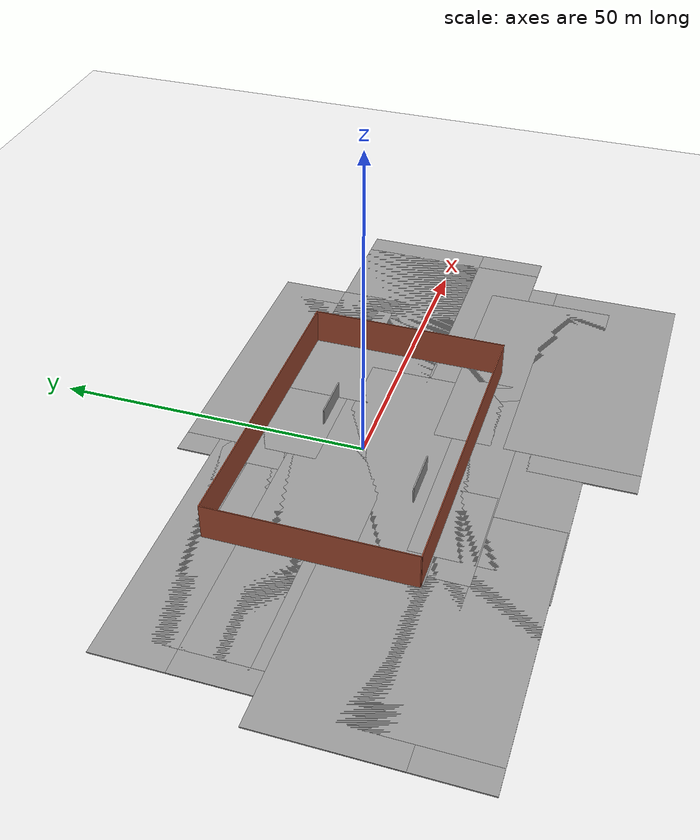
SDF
<sdf version="1.6">
 <world name="default">
  <light name="sun" type="directional">
   <pose>0 0 10 0 -0 0</pose>
   <diffuse>0.8 0.8 0.8 1</diffuse>
   <specular>0.2 0.2 0.2 1</specular>
   <attenuation>
    <range>1000</range>
    <constant>0.9</constant>
    <linear>0.01</linear>
    <quadratic>0.001</quadratic>
   </attenuation>
   <direction>-0.5 0.1 -0.9</direction>
  </light>
  <light name="sun2" type="directional">
   <cast_shadows>0</cast_shadows>
   <pose>0 0 0.5 3.14 -0 0</pose>
   <diffuse>0.8 0.8 0.8 1</diffuse>
   <specular>0.2 0.2 0.2 1</specular>
   <attenuation>
    <range>1000</range>
    <constant>0.9</constant>
    <linear>0.01</linear>
    <quadratic>0.001</quadratic>
   </attenuation>
   <direction>-0.5 0.1 -0.9</direction>
  </light>
  <light name="sun2" type="directional">
   <cast_shadows>0</cast_shadows>
   <pose>0 0 0.1 3.14 -0 0</pose>
   <diffuse>0.8 0.8 0.8 1</diffuse>
   <specular>0.2 0.2 0.2 1</specular>
   <attenuation>
    <range>1000</range>
    <constant>10</constant>
    <linear>0.01</linear>
    <quadratic>0.001</quadratic>
   </attenuation>
   <direction>-0.5 0.1 -0.9</direction>
  </light>
  <model name="ground_plane">
   <static>1</static>
   <link name="link">
    <collision name="collision">
     <geometry><plane><normal>0 0 1</normal><size>100 100</size></plane></geometry>
     <surface><friction><ode><mu>100</mu><mu2>50</mu2></ode></friction></surface>
    </collision>
    <visual name="visual">
     <cast_shadows>0</cast_shadows>
     <geometry><plane><normal>0 0 1</normal><size>100 100</size></plane></geometry>
     <material>
      <script><uri>file://media/materials/scripts/gazebo.material</uri><name>Gazebo/White</name></script>
     </material>
    </visual>
    <velocity_decay><linear>0</linear><angular>0</angular></velocity_decay>
   </link>
  </model>
  <physics name="default_physics" default="0" type="ode">
   <max_step_size>0.001</max_step_size>
   <real_time_factor>1</real_time_factor>
   <real_time_update_rate>1000</real_time_update_rate>
  </physics>
  <scene><ambient>0.4 0.4 0.4 1</ambient><background>0.7 0.7 0.7 1</background><shadows>1</shadows></scene>
  <model name="grey_wall">
   <static>1</static>
   <link name="link">
    <pose>0 0 1.4 0 -0 0</pose>
    <collision name="collision"><geometry><box><size>7.5 0.2 2.8</size></box></geometry></collision>
    <visual name="visual">
     <cast_shadows>0</cast_shadows>
     <geometry><box><size>7.5 0.2 2.8</size></box></geometry>
     <material>
      <script>
       <uri>model://grey_wall/materials/scripts</uri>
       <uri>model://grey_wall/materials/textures</uri>
       <name>vrc/grey_wall</name>
      </script>
     </material>
    </visual>
    <velocity_decay><linear>0</linear><angular>0</angular></velocity_decay>
   </link>
   <pose>7.60473 7.71769 0 0 -0 0</pose>
  </model>
  <model name="ground_plane2">
   <link name="link">
    <inertial>
     <mass>1</mass>
     <inertia><ixx>1</ixx><ixy>0</ixy><ixz>0</ixz><iyy>1</iyy><iyz>0</iyz><izz>1</izz></inertia>
    </inertial>
    <visual name="visual_1">
     <pose>-2 5.5 0 0 -0 0</pose>
     <cast_shadows>0</cast_shadows>
     <geometry><box><size>45 21 0.2</size></box></geometry>
     <material>
      <script>
       <uri>file://media/materials/scripts/gazebo.material</uri>
       <name>Gazebo/Gray</name>
       <name>vrc/mud</name>
      </script>
      <shader type="pixel"><normal_map>__default__</normal_map></shader>
      <ambient>0.5 0.5 0.5 1</ambient>
      <diffuse>0.5 0.5 0.5 1</diffuse>
      <specular>0.2 0.2 0.2 1</specular>
      <emissive>0 0 0 1</emissive>
     </material>
    </visual>
    <visual name="visual_3">
     <pose>2 -5.5 0 0 -0 0</pose>
     <cast_shadows>0</cast_shadows>
     <geometry><box><size>45 21 0.2</size></box></geometry>
     <material>
      <script>
       <uri>file://media/materials/scripts/gazebo.material</uri>
       <name>Gazebo/Gray</name>
       <name>vrc/mud</name>
      </script>
      <shader type="pixel"><normal_map>__default__</normal_map></shader>
      <ambient>0.5 0.5 0.5 1</ambient>
      <diffuse>0.5 0.5 0.5 1</diffuse>
      <specular>0.2 0.2 0.2 1</specular>
      <emissive>0 0 0 1</emissive>
     </material>
    </visual>
    <visual name="visual_2">
     <pose>2 5.5 0 0 -0 0</pose>
     <cast_shadows>0</cast_shadows>
     <geometry><box><size>45 21 0.2</size></box></geometry>
     <material>
      <script>
       <uri>file://media/materials/scripts/gazebo.material</uri>
       <name>Gazebo/Gray</name>
       <name>vrc/mud</name>
      </script>
      <shader type="pixel"><normal_map>__default__</normal_map></shader>
      <ambient>0.5 0.5 0.5 1</ambient>
      <diffuse>0.5 0.5 0.5 1</diffuse>
      <specular>0.2 0.2 0.2 1</specular>
      <emissive>0 0 0 1</emissive>
     </material>
    </visual>
    <visual name="visual_4">
     <pose>-2 -5.5 0 0 -0 0</pose>
     <cast_shadows>0</cast_shadows>
     <geometry><box><size>45 21 0.2</size></box></geometry>
     <material>
      <script>
       <uri>file://media/materials/scripts/gazebo.material</uri>
       <name>Gazebo/Gray</name>
       <name>vrc/mud</name>
      </script>
      <shader type="pixel"><normal_map>__default__</normal_map></shader>
      <ambient>0.5 0.5 0.5 1</ambient>
      <diffuse>0.5 0.5 0.5 1</diffuse>
      <specular>0.2 0.2 0.2 1</specular>
      <emissive>0 0 0 1</emissive>
     </material>
    </visual>
    <collision name="collision">
     <pose>0 0.2 0 0 -0 0</pose>
     <geometry><box><size>49 32 0.2</size></box></geometry>
     <surface>
      <friction>
       <ode><mu>1</mu><mu2>1</mu2><fdir1>0 0 0</fdir1><slip1>0</slip1><slip2>0</slip2></ode>
       <torsional>
        <coefficient>1</coefficient>
        <patch_radius>0</patch_radius>
        <surface_radius>0</surface_radius>
        <use_patch_radius>1</use_patch_radius>
        <ode><slip>0</slip></ode>
       </torsional>
      </friction>
      <bounce><restitution_coefficient>0</restitution_coefficient><threshold>1e+06</threshold></bounce>
      <contact>
       <collide_without_contact>0</collide_without_contact>
       <collide_without_contact_bitmask>1</collide_without_contact_bitmask>
       <collide_bitmask>1</collide_bitmask>
       <ode>
        <soft_cfm>0</soft_cfm>
        <soft_erp>0.2</soft_erp>
        <kp>1e+13</kp>
        <kd>1</kd>
        <max_vel>0.01</max_vel>
        <min_depth>0</min_depth>
       </ode>
       <bullet>
        <split_impulse>1</split_impulse>
        <split_impulse_penetration_threshold>-0.01</split_impulse_penetration_threshold>
        <soft_cfm>0</soft_cfm>
        <soft_erp>0.2</soft_erp>
        <kp>1e+13</kp>
        <kd>1</kd>
       </bullet>
      </contact>
     </surface>
    </collision>
   </link>
   <static>1</static>
   <pose>-0.060555 -0.273103 0.01 0 -0 0</pose>
  </model>
  <gravity>0 0 -9.8</gravity>
  <magnetic_field>6e-06 2.3e-05 -4.2e-05</magnetic_field>
  <atmosphere type="adiabatic"/>
  <spherical_coordinates>
   <surface_model>EARTH_WGS84</surface_model>
   <latitude_deg>0</latitude_deg>
   <longitude_deg>0</longitude_deg>
   <elevation>0</elevation>
   <heading_deg>0</heading_deg>
  </spherical_coordinates>
  <model name="ground_plane2_clone">
   <link name="link">
    <inertial>
     <mass>1</mass>
     <inertia><ixx>1</ixx><ixy>0</ixy><ixz>0</ixz><iyy>1</iyy><iyz>0</iyz><izz>1</izz></inertia>
    </inertial>
    <visual name="visual_1">
     <pose>-2 5.5 0 0 -0 0</pose>
     <cast_shadows>0</cast_shadows>
     <geometry><box><size>45 21 0.2</size></box></geometry>
     <material>
      <script>
       <uri>file://media/materials/scripts/gazebo.material</uri>
       <name>Gazebo/Gray</name>
       <name>vrc/mud</name>
      </script>
      <shader type="pixel"><normal_map>__default__</normal_map></shader>
      <ambient>0.5 0.5 0.5 1</ambient>
      <diffuse>0.5 0.5 0.5 1</diffuse>
      <specular>0.2 0.2 0.2 1</specular>
      <emissive>0 0 0 1</emissive>
     </material>
    </visual>
    <visual name="visual_3">
     <pose>2 -5.5 0 0 -0 0</pose>
     <cast_shadows>0</cast_shadows>
     <geometry><box><size>45 21 0.2</size></box></geometry>
     <material>
      <script>
       <uri>file://media/materials/scripts/gazebo.material</uri>
       <name>Gazebo/Gray</name>
       <name>vrc/mud</name>
      </script>
      <shader type="pixel"><normal_map>__default__</normal_map></shader>
      <ambient>0.5 0.5 0.5 1</ambient>
      <diffuse>0.5 0.5 0.5 1</diffuse>
      <specular>0.2 0.2 0.2 1</specular>
      <emissive>0 0 0 1</emissive>
     </material>
    </visual>
    <visual name="visual_2">
     <pose>2 5.5 0 0 -0 0</pose>
     <cast_shadows>0</cast_shadows>
     <geometry><box><size>45 21 0.2</size></box></geometry>
     <material>
      <script>
       <uri>file://media/materials/scripts/gazebo.material</uri>
       <name>Gazebo/Gray</name>
       <name>vrc/mud</name>
      </script>
      <shader type="pixel"><normal_map>__default__</normal_map></shader>
      <ambient>0.5 0.5 0.5 1</ambient>
      <diffuse>0.5 0.5 0.5 1</diffuse>
      <specular>0.2 0.2 0.2 1</specular>
      <emissive>0 0 0 1</emissive>
     </material>
    </visual>
    <visual name="visual_4">
     <pose>-2 -5.5 0 0 -0 0</pose>
     <cast_shadows>0</cast_shadows>
     <geometry><box><size>45 21 0.2</size></box></geometry>
     <material>
      <script>
       <uri>file://media/materials/scripts/gazebo.material</uri>
       <name>Gazebo/Gray</name>
       <name>vrc/mud</name>
      </script>
      <shader type="pixel"><normal_map>__default__</normal_map></shader>
      <ambient>0.5 0.5 0.5 1</ambient>
      <diffuse>0.5 0.5 0.5 1</diffuse>
      <specular>0.2 0.2 0.2 1</specular>
      <emissive>0 0 0 1</emissive>
     </material>
    </visual>
    <collision name="collision">
     <pose>0 0.2 0 0 -0 0</pose>
     <geometry><box><size>49 32 0.2</size></box></geometry>
     <surface>
      <friction>
       <ode><mu>1</mu><mu2>1</mu2><fdir1>0 0 0</fdir1><slip1>0</slip1><slip2>0</slip2></ode>
       <torsional>
        <coefficient>1</coefficient>
        <patch_radius>0</patch_radius>
        <surface_radius>0</surface_radius>
        <use_patch_radius>1</use_patch_radius>
        <ode><slip>0</slip></ode>
       </torsional>
      </friction>
      <bounce><restitution_coefficient>0</restitution_coefficient><threshold>1e+06</threshold></bounce>
      <contact>
       <collide_without_contact>0</collide_without_contact>
       <collide_without_contact_bitmask>1</collide_without_contact_bitmask>
       <collide_bitmask>1</collide_bitmask>
       <ode>
        <soft_cfm>0</soft_cfm>
        <soft_erp>0.2</soft_erp>
        <kp>1e+13</kp>
        <kd>1</kd>
        <max_vel>0.01</max_vel>
        <min_depth>0</min_depth>
       </ode>
       <bullet>
        <split_impulse>1</split_impulse>
        <split_impulse_penetration_threshold>-0.01</split_impulse_penetration_threshold>
        <soft_cfm>0</soft_cfm>
        <soft_erp>0.2</soft_erp>
        <kp>1e+13</kp>
        <kd>1</kd>
       </bullet>
      </contact>
     </surface>
    </collision>
   </link>
   <static>1</static>
   <pose>35.5273 0.081065 0.01 0 -0 0</pose>
  </model>
  <model name="ground_plane2_clone_0">
   <link name="link">
    <inertial>
     <mass>1</mass>
     <inertia><ixx>1</ixx><ixy>0</ixy><ixz>0</ixz><iyy>1</iyy><iyz>0</iyz><izz>1</izz></inertia>
    </inertial>
    <visual name="visual_1">
     <pose>-2 5.5 0 0 -0 0</pose>
     <cast_shadows>0</cast_shadows>
     <geometry><box><size>45 21 0.2</size></box></geometry>
     <material>
      <script>
       <uri>file://media/materials/scripts/gazebo.material</uri>
       <name>Gazebo/Gray</name>
       <name>vrc/mud</name>
      </script>
      <shader type="pixel"><normal_map>__default__</normal_map></shader>
      <ambient>0.5 0.5 0.5 1</ambient>
      <diffuse>0.5 0.5 0.5 1</diffuse>
      <specular>0.2 0.2 0.2 1</specular>
      <emissive>0 0 0 1</emissive>
     </material>
    </visual>
    <visual name="visual_3">
     <pose>2 -5.5 0 0 -0 0</pose>
     <cast_shadows>0</cast_shadows>
     <geometry><box><size>45 21 0.2</size></box></geometry>
     <material>
      <script>
       <uri>file://media/materials/scripts/gazebo.material</uri>
       <name>Gazebo/Gray</name>
       <name>vrc/mud</name>
      </script>
      <shader type="pixel"><normal_map>__default__</normal_map></shader>
      <ambient>0.5 0.5 0.5 1</ambient>
      <diffuse>0.5 0.5 0.5 1</diffuse>
      <specular>0.2 0.2 0.2 1</specular>
      <emissive>0 0 0 1</emissive>
     </material>
    </visual>
    <visual name="visual_2">
     <pose>2 5.5 0 0 -0 0</pose>
     <cast_shadows>0</cast_shadows>
     <geometry><box><size>45 21 0.2</size></box></geometry>
     <material>
      <script>
       <uri>file://media/materials/scripts/gazebo.material</uri>
       <name>Gazebo/Gray</name>
       <name>vrc/mud</name>
      </script>
      <shader type="pixel"><normal_map>__default__</normal_map></shader>
      <ambient>0.5 0.5 0.5 1</ambient>
      <diffuse>0.5 0.5 0.5 1</diffuse>
      <specular>0.2 0.2 0.2 1</specular>
      <emissive>0 0 0 1</emissive>
     </material>
    </visual>
    <visual name="visual_4">
     <pose>-2 -5.5 0 0 -0 0</pose>
     <cast_shadows>0</cast_shadows>
     <geometry><box><size>45 21 0.2</size></box></geometry>
     <material>
      <script>
       <uri>file://media/materials/scripts/gazebo.material</uri>
       <name>Gazebo/Gray</name>
       <name>vrc/mud</name>
      </script>
      <shader type="pixel"><normal_map>__default__</normal_map></shader>
      <ambient>0.5 0.5 0.5 1</ambient>
      <diffuse>0.5 0.5 0.5 1</diffuse>
      <specular>0.2 0.2 0.2 1</specular>
      <emissive>0 0 0 1</emissive>
     </material>
    </visual>
    <collision name="collision">
     <pose>0 0.2 0 0 -0 0</pose>
     <geometry><box><size>49 32 0.2</size></box></geometry>
     <surface>
      <friction>
       <ode><mu>1</mu><mu2>1</mu2><fdir1>0 0 0</fdir1><slip1>0</slip1><slip2>0</slip2></ode>
       <torsional>
        <coefficient>1</coefficient>
        <patch_radius>0</patch_radius>
        <surface_radius>0</surface_radius>
        <use_patch_radius>1</use_patch_radius>
        <ode><slip>0</slip></ode>
       </torsional>
      </friction>
      <bounce><restitution_coefficient>0</restitution_coefficient><threshold>1e+06</threshold></bounce>
      <contact>
       <collide_without_contact>0</collide_without_contact>
       <collide_without_contact_bitmask>1</collide_without_contact_bitmask>
       <collide_bitmask>1</collide_bitmask>
       <ode>
        <soft_cfm>0</soft_cfm>
        <soft_erp>0.2</soft_erp>
        <kp>1e+13</kp>
        <kd>1</kd>
        <max_vel>0.01</max_vel>
        <min_depth>0</min_depth>
       </ode>
       <bullet>
        <split_impulse>1</split_impulse>
        <split_impulse_penetration_threshold>-0.01</split_impulse_penetration_threshold>
        <soft_cfm>0</soft_cfm>
        <soft_erp>0.2</soft_erp>
        <kp>1e+13</kp>
        <kd>1</kd>
       </bullet>
      </contact>
     </surface>
    </collision>
   </link>
   <static>1</static>
   <pose>1.63403 -17.3267 0.01 0 -0 0</pose>
  </model>
  <model name="ground_plane2_clone_1">
   <link name="link">
    <inertial>
     <mass>1</mass>
     <inertia><ixx>1</ixx><ixy>0</ixy><ixz>0</ixz><iyy>1</iyy><iyz>0</iyz><izz>1</izz></inertia>
    </inertial>
    <visual name="visual_1">
     <pose>-2 5.5 0 0 -0 0</pose>
     <cast_shadows>0</cast_shadows>
     <geometry><box><size>45 21 0.2</size></box></geometry>
     <material>
      <script>
       <uri>file://media/materials/scripts/gazebo.material</uri>
       <name>Gazebo/Gray</name>
       <name>vrc/mud</name>
      </script>
      <shader type="pixel"><normal_map>__default__</normal_map></shader>
      <ambient>0.5 0.5 0.5 1</ambient>
      <diffuse>0.5 0.5 0.5 1</diffuse>
      <specular>0.2 0.2 0.2 1</specular>
      <emissive>0 0 0 1</emissive>
     </material>
    </visual>
    <visual name="visual_3">
     <pose>2 -5.5 0 0 -0 0</pose>
     <cast_shadows>0</cast_shadows>
     <geometry><box><size>45 21 0.2</size></box></geometry>
     <material>
      <script>
       <uri>file://media/materials/scripts/gazebo.material</uri>
       <name>Gazebo/Gray</name>
       <name>vrc/mud</name>
      </script>
      <shader type="pixel"><normal_map>__default__</normal_map></shader>
      <ambient>0.5 0.5 0.5 1</ambient>
      <diffuse>0.5 0.5 0.5 1</diffuse>
      <specular>0.2 0.2 0.2 1</specular>
      <emissive>0 0 0 1</emissive>
     </material>
    </visual>
    <visual name="visual_2">
     <pose>2 5.5 0 0 -0 0</pose>
     <cast_shadows>0</cast_shadows>
     <geometry><box><size>45 21 0.2</size></box></geometry>
     <material>
      <script>
       <uri>file://media/materials/scripts/gazebo.material</uri>
       <name>Gazebo/Gray</name>
       <name>vrc/mud</name>
      </script>
      <shader type="pixel"><normal_map>__default__</normal_map></shader>
      <ambient>0.5 0.5 0.5 1</ambient>
      <diffuse>0.5 0.5 0.5 1</diffuse>
      <specular>0.2 0.2 0.2 1</specular>
      <emissive>0 0 0 1</emissive>
     </material>
    </visual>
    <visual name="visual_4">
     <pose>-2 -5.5 0 0 -0 0</pose>
     <cast_shadows>0</cast_shadows>
     <geometry><box><size>45 21 0.2</size></box></geometry>
     <material>
      <script>
       <uri>file://media/materials/scripts/gazebo.material</uri>
       <name>Gazebo/Gray</name>
       <name>vrc/mud</name>
      </script>
      <shader type="pixel"><normal_map>__default__</normal_map></shader>
      <ambient>0.5 0.5 0.5 1</ambient>
      <diffuse>0.5 0.5 0.5 1</diffuse>
      <specular>0.2 0.2 0.2 1</specular>
      <emissive>0 0 0 1</emissive>
     </material>
    </visual>
    <collision name="collision">
     <pose>0 0.2 0 0 -0 0</pose>
     <geometry><box><size>49 32 0.2</size></box></geometry>
     <surface>
      <friction>
       <ode><mu>1</mu><mu2>1</mu2><fdir1>0 0 0</fdir1><slip1>0</slip1><slip2>0</slip2></ode>
       <torsional>
        <coefficient>1</coefficient>
        <patch_radius>0</patch_radius>
        <surface_radius>0</surface_radius>
        <use_patch_radius>1</use_patch_radius>
        <ode><slip>0</slip></ode>
       </torsional>
      </friction>
      <bounce><restitution_coefficient>0</restitution_coefficient><threshold>1e+06</threshold></bounce>
      <contact>
       <collide_without_contact>0</collide_without_contact>
       <collide_without_contact_bitmask>1</collide_without_contact_bitmask>
       <collide_bitmask>1</collide_bitmask>
       <ode>
        <soft_cfm>0</soft_cfm>
        <soft_erp>0.2</soft_erp>
        <kp>1e+13</kp>
        <kd>1</kd>
        <max_vel>0.01</max_vel>
        <min_depth>0</min_depth>
       </ode>
       <bullet>
        <split_impulse>1</split_impulse>
        <split_impulse_penetration_threshold>-0.01</split_impulse_penetration_threshold>
        <soft_cfm>0</soft_cfm>
        <soft_erp>0.2</soft_erp>
        <kp>1e+13</kp>
        <kd>1</kd>
       </bullet>
      </contact>
     </surface>
    </collision>
   </link>
   <static>1</static>
   <pose>-29.1003 -17.146 0.01 0 -0 0</pose>
  </model>
  <model name="ground_plane2_clone_2">
   <link name="link">
    <inertial>
     <mass>1</mass>
     <inertia><ixx>1</ixx><ixy>0</ixy><ixz>0</ixz><iyy>1</iyy><iyz>0</iyz><izz>1</izz></inertia>
    </inertial>
    <visual name="visual_1">
     <pose>-2 5.5 0 0 -0 0</pose>
     <cast_shadows>0</cast_shadows>
     <geometry><box><size>45 21 0.2</size></box></geometry>
     <material>
      <script>
       <uri>file://media/materials/scripts/gazebo.material</uri>
       <name>Gazebo/Gray</name>
       <name>vrc/mud</name>
      </script>
      <shader type="pixel"><normal_map>__default__</normal_map></shader>
      <ambient>0.5 0.5 0.5 1</ambient>
      <diffuse>0.5 0.5 0.5 1</diffuse>
      <specular>0.2 0.2 0.2 1</specular>
      <emissive>0 0 0 1</emissive>
     </material>
    </visual>
    <visual name="visual_3">
     <pose>2 -5.5 0 0 -0 0</pose>
     <cast_shadows>0</cast_shadows>
     <geometry><box><size>45 21 0.2</size></box></geometry>
     <material>
      <script>
       <uri>file://media/materials/scripts/gazebo.material</uri>
       <name>Gazebo/Gray</name>
       <name>vrc/mud</name>
      </script>
      <shader type="pixel"><normal_map>__default__</normal_map></shader>
      <ambient>0.5 0.5 0.5 1</ambient>
      <diffuse>0.5 0.5 0.5 1</diffuse>
      <specular>0.2 0.2 0.2 1</specular>
      <emissive>0 0 0 1</emissive>
     </material>
    </visual>
    <visual name="visual_2">
     <pose>2 5.5 0 0 -0 0</pose>
     <cast_shadows>0</cast_shadows>
     <geometry><box><size>45 21 0.2</size></box></geometry>
     <material>
      <script>
       <uri>file://media/materials/scripts/gazebo.material</uri>
       <name>Gazebo/Gray</name>
       <name>vrc/mud</name>
      </script>
      <shader type="pixel"><normal_map>__default__</normal_map></shader>
      <ambient>0.5 0.5 0.5 1</ambient>
      <diffuse>0.5 0.5 0.5 1</diffuse>
      <specular>0.2 0.2 0.2 1</specular>
      <emissive>0 0 0 1</emissive>
     </material>
    </visual>
    <visual name="visual_4">
     <pose>-2 -5.5 0 0 -0 0</pose>
     <cast_shadows>0</cast_shadows>
     <geometry><box><size>45 21 0.2</size></box></geometry>
     <material>
      <script>
       <uri>file://media/materials/scripts/gazebo.material</uri>
       <name>Gazebo/Gray</name>
       <name>vrc/mud</name>
      </script>
      <shader type="pixel"><normal_map>__default__</normal_map></shader>
      <ambient>0.5 0.5 0.5 1</ambient>
      <diffuse>0.5 0.5 0.5 1</diffuse>
      <specular>0.2 0.2 0.2 1</specular>
      <emissive>0 0 0 1</emissive>
     </material>
    </visual>
    <collision name="collision">
     <pose>0 0.2 0 0 -0 0</pose>
     <geometry><box><size>49 32 0.2</size></box></geometry>
     <surface>
      <friction>
       <ode><mu>1</mu><mu2>1</mu2><fdir1>0 0 0</fdir1><slip1>0</slip1><slip2>0</slip2></ode>
       <torsional>
        <coefficient>1</coefficient>
        <patch_radius>0</patch_radius>
        <surface_radius>0</surface_radius>
        <use_patch_radius>1</use_patch_radius>
        <ode><slip>0</slip></ode>
       </torsional>
      </friction>
      <bounce><restitution_coefficient>0</restitution_coefficient><threshold>1e+06</threshold></bounce>
      <contact>
       <collide_without_contact>0</collide_without_contact>
       <collide_without_contact_bitmask>1</collide_without_contact_bitmask>
       <collide_bitmask>1</collide_bitmask>
       <ode>
        <soft_cfm>0</soft_cfm>
        <soft_erp>0.2</soft_erp>
        <kp>1e+13</kp>
        <kd>1</kd>
        <max_vel>0.01</max_vel>
        <min_depth>0</min_depth>
       </ode>
       <bullet>
        <split_impulse>1</split_impulse>
        <split_impulse_penetration_threshold>-0.01</split_impulse_penetration_threshold>
        <soft_cfm>0</soft_cfm>
        <soft_erp>0.2</soft_erp>
        <kp>1e+13</kp>
        <kd>1</kd>
       </bullet>
      </contact>
     </surface>
    </collision>
   </link>
   <static>1</static>
   <pose>-24.2942 5.76153 0.01 0 -0 0</pose>
  </model>
  <model name="ground_plane2_clone_3">
   <link name="link">
    <inertial>
     <mass>1</mass>
     <inertia><ixx>1</ixx><ixy>0</ixy><ixz>0</ixz><iyy>1</iyy><iyz>0</iyz><izz>1</izz></inertia>
    </inertial>
    <visual name="visual_1">
     <pose>-2 5.5 0 0 -0 0</pose>
     <cast_shadows>0</cast_shadows>
     <geometry><box><size>45 21 0.2</size></box></geometry>
     <material>
      <script>
       <uri>file://media/materials/scripts/gazebo.material</uri>
       <name>Gazebo/Gray</name>
       <name>vrc/mud</name>
      </script>
      <shader type="pixel"><normal_map>__default__</normal_map></shader>
      <ambient>0.5 0.5 0.5 1</ambient>
      <diffuse>0.5 0.5 0.5 1</diffuse>
      <specular>0.2 0.2 0.2 1</specular>
      <emissive>0 0 0 1</emissive>
     </material>
    </visual>
    <visual name="visual_3">
     <pose>2 -5.5 0 0 -0 0</pose>
     <cast_shadows>0</cast_shadows>
     <geometry><box><size>45 21 0.2</size></box></geometry>
     <material>
      <script>
       <uri>file://media/materials/scripts/gazebo.material</uri>
       <name>Gazebo/Gray</name>
       <name>vrc/mud</name>
      </script>
      <shader type="pixel"><normal_map>__default__</normal_map></shader>
      <ambient>0.5 0.5 0.5 1</ambient>
      <diffuse>0.5 0.5 0.5 1</diffuse>
      <specular>0.2 0.2 0.2 1</specular>
      <emissive>0 0 0 1</emissive>
     </material>
    </visual>
    <visual name="visual_2">
     <pose>2 5.5 0 0 -0 0</pose>
     <cast_shadows>0</cast_shadows>
     <geometry><box><size>45 21 0.2</size></box></geometry>
     <material>
      <script>
       <uri>file://media/materials/scripts/gazebo.material</uri>
       <name>Gazebo/Gray</name>
       <name>vrc/mud</name>
      </script>
      <shader type="pixel"><normal_map>__default__</normal_map></shader>
      <ambient>0.5 0.5 0.5 1</ambient>
      <diffuse>0.5 0.5 0.5 1</diffuse>
      <specular>0.2 0.2 0.2 1</specular>
      <emissive>0 0 0 1</emissive>
     </material>
    </visual>
    <visual name="visual_4">
     <pose>-2 -5.5 0 0 -0 0</pose>
     <cast_shadows>0</cast_shadows>
     <geometry><box><size>45 21 0.2</size></box></geometry>
     <material>
      <script>
       <uri>file://media/materials/scripts/gazebo.material</uri>
       <name>Gazebo/Gray</name>
       <name>vrc/mud</name>
      </script>
      <shader type="pixel"><normal_map>__default__</normal_map></shader>
      <ambient>0.5 0.5 0.5 1</ambient>
      <diffuse>0.5 0.5 0.5 1</diffuse>
      <specular>0.2 0.2 0.2 1</specular>
      <emissive>0 0 0 1</emissive>
     </material>
    </visual>
    <collision name="collision">
     <pose>0 0.2 0 0 -0 0</pose>
     <geometry><box><size>49 32 0.2</size></box></geometry>
     <surface>
      <friction>
       <ode><mu>1</mu><mu2>1</mu2><fdir1>0 0 0</fdir1><slip1>0</slip1><slip2>0</slip2></ode>
       <torsional>
        <coefficient>1</coefficient>
        <patch_radius>0</patch_radius>
        <surface_radius>0</surface_radius>
        <use_patch_radius>1</use_patch_radius>
        <ode><slip>0</slip></ode>
       </torsional>
      </friction>
      <bounce><restitution_coefficient>0</restitution_coefficient><threshold>1e+06</threshold></bounce>
      <contact>
       <collide_without_contact>0</collide_without_contact>
       <collide_without_contact_bitmask>1</collide_without_contact_bitmask>
       <collide_bitmask>1</collide_bitmask>
       <ode>
        <soft_cfm>0</soft_cfm>
        <soft_erp>0.2</soft_erp>
        <kp>1e+13</kp>
        <kd>1</kd>
        <max_vel>0.01</max_vel>
        <min_depth>0</min_depth>
       </ode>
       <bullet>
        <split_impulse>1</split_impulse>
        <split_impulse_penetration_threshold>-0.01</split_impulse_penetration_threshold>
        <soft_cfm>0</soft_cfm>
        <soft_erp>0.2</soft_erp>
        <kp>1e+13</kp>
        <kd>1</kd>
       </bullet>
      </contact>
     </surface>
    </collision>
   </link>
   <static>1</static>
   <pose>16.0819 11.1804 0.01 0 -0 0</pose>
  </model>
  <model name="ground_plane2_clone_4">
   <link name="link">
    <inertial>
     <mass>1</mass>
     <inertia><ixx>1</ixx><ixy>0</ixy><ixz>0</ixz><iyy>1</iyy><iyz>0</iyz><izz>1</izz></inertia>
    </inertial>
    <visual name="visual_1">
     <pose>-2 5.5 0 0 -0 0</pose>
     <cast_shadows>0</cast_shadows>
     <geometry><box><size>45 21 0.2</size></box></geometry>
     <material>
      <script>
       <uri>file://media/materials/scripts/gazebo.material</uri>
       <name>Gazebo/Gray</name>
       <name>vrc/mud</name>
      </script>
      <shader type="pixel"><normal_map>__default__</normal_map></shader>
      <ambient>0.5 0.5 0.5 1</ambient>
      <diffuse>0.5 0.5 0.5 1</diffuse>
      <specular>0.2 0.2 0.2 1</specular>
      <emissive>0 0 0 1</emissive>
     </material>
    </visual>
    <visual name="visual_3">
     <pose>2 -5.5 0 0 -0 0</pose>
     <cast_shadows>0</cast_shadows>
     <geometry><box><size>45 21 0.2</size></box></geometry>
     <material>
      <script>
       <uri>file://media/materials/scripts/gazebo.material</uri>
       <name>Gazebo/Gray</name>
       <name>vrc/mud</name>
      </script>
      <shader type="pixel"><normal_map>__default__</normal_map></shader>
      <ambient>0.5 0.5 0.5 1</ambient>
      <diffuse>0.5 0.5 0.5 1</diffuse>
      <specular>0.2 0.2 0.2 1</specular>
      <emissive>0 0 0 1</emissive>
     </material>
    </visual>
    <visual name="visual_2">
     <pose>2 5.5 0 0 -0 0</pose>
     <cast_shadows>0</cast_shadows>
     <geometry><box><size>45 21 0.2</size></box></geometry>
     <material>
      <script>
       <uri>file://media/materials/scripts/gazebo.material</uri>
       <name>Gazebo/Gray</name>
       <name>vrc/mud</name>
      </script>
      <shader type="pixel"><normal_map>__default__</normal_map></shader>
      <ambient>0.5 0.5 0.5 1</ambient>
      <diffuse>0.5 0.5 0.5 1</diffuse>
      <specular>0.2 0.2 0.2 1</specular>
      <emissive>0 0 0 1</emissive>
     </material>
    </visual>
    <visual name="visual_4">
     <pose>-2 -5.5 0 0 -0 0</pose>
     <cast_shadows>0</cast_shadows>
     <geometry><box><size>45 21 0.2</size></box></geometry>
     <material>
      <script>
       <uri>file://media/materials/scripts/gazebo.material</uri>
       <name>Gazebo/Gray</name>
       <name>vrc/mud</name>
      </script>
      <shader type="pixel"><normal_map>__default__</normal_map></shader>
      <ambient>0.5 0.5 0.5 1</ambient>
      <diffuse>0.5 0.5 0.5 1</diffuse>
      <specular>0.2 0.2 0.2 1</specular>
      <emissive>0 0 0 1</emissive>
     </material>
    </visual>
    <collision name="collision">
     <pose>0 0.2 0 0 -0 0</pose>
     <geometry><box><size>49 32 0.2</size></box></geometry>
     <surface>
      <friction>
       <ode><mu>1</mu><mu2>1</mu2><fdir1>0 0 0</fdir1><slip1>0</slip1><slip2>0</slip2></ode>
       <torsional>
        <coefficient>1</coefficient>
        <patch_radius>0</patch_radius>
        <surface_radius>0</surface_radius>
        <use_patch_radius>1</use_patch_radius>
        <ode><slip>0</slip></ode>
       </torsional>
      </friction>
      <bounce><restitution_coefficient>0</restitution_coefficient><threshold>1e+06</threshold></bounce>
      <contact>
       <collide_without_contact>0</collide_without_contact>
       <collide_without_contact_bitmask>1</collide_without_contact_bitmask>
       <collide_bitmask>1</collide_bitmask>
       <ode>
        <soft_cfm>0</soft_cfm>
        <soft_erp>0.2</soft_erp>
        <kp>1e+13</kp>
        <kd>1</kd>
        <max_vel>0.01</max_vel>
        <min_depth>0</min_depth>
       </ode>
       <bullet>
        <split_impulse>1</split_impulse>
        <split_impulse_penetration_threshold>-0.01</split_impulse_penetration_threshold>
        <soft_cfm>0</soft_cfm>
        <soft_erp>0.2</soft_erp>
        <kp>1e+13</kp>
        <kd>1</kd>
       </bullet>
      </contact>
     </surface>
    </collision>
   </link>
   <static>1</static>
   <pose>27.1187 -25.4007 0.01 0 -0 0</pose>
  </model>
  <model name="grey_wall_0">
   <static>1</static>
   <link name="link">
    <pose>0 0 1.4 0 -0 0</pose>
    <collision name="collision"><geometry><box><size>7.5 0.2 2.8</size></box></geometry></collision>
    <visual name="visual">
     <cast_shadows>0</cast_shadows>
     <geometry><box><size>7.5 0.2 2.8</size></box></geometry>
     <material>
      <script>
       <uri>model://grey_wall/materials/scripts</uri>
       <uri>model://grey_wall/materials/textures</uri>
       <name>vrc/grey_wall</name>
      </script>
     </material>
    </visual>
   </link>
   <pose>-5.40128 -10.5 0 0 -0 0</pose>
  </model>
  <model name="wut_2">
   <link name="Wall_23">
    <collision name="Wall_23_Collision">
     <geometry><box><size>32.15 0.15 6</size></box></geometry>
     <pose>0 0 3 0 -0 0</pose>
    </collision>
    <visual name="Wall_23_Visual">
     <pose>0 0 3 0 -0 0</pose>
     <geometry><box><size>32.15 0.15 6</size></box></geometry>
     <material>
      <script><uri>file://media/materials/scripts/gazebo.material</uri><name>Gazebo/Bricks</name></script>
      <ambient>1 1 1 1</ambient>
     </material>
    </visual>
    <pose>25 0 0 0 -0 1.5708</pose>
   </link>
   <link name="Wall_27">
    <collision name="Wall_27_Collision">
     <geometry><box><size>50.15 0.15 6</size></box></geometry>
     <pose>0 0 3 0 -0 0</pose>
    </collision>
    <visual name="Wall_27_Visual">
     <pose>0 0 3 0 -0 0</pose>
     <geometry><box><size>50.15 0.15 6</size></box></geometry>
     <material>
      <script><uri>file://media/materials/scripts/gazebo.material</uri><name>Gazebo/Bricks</name></script>
      <ambient>1 1 1 1</ambient>
     </material>
    </visual>
    <pose>0 -16 0 0 -0 3.14159</pose>
   </link>
   <link name="Wall_28">
    <collision name="Wall_28_Collision">
     <geometry><box><size>32.15 0.15 6</size></box></geometry>
     <pose>0 0 3 0 -0 0</pose>
    </collision>
    <visual name="Wall_28_Visual">
     <pose>0 0 3 0 -0 0</pose>
     <geometry><box><size>32.15 0.15 6</size></box></geometry>
     <material>
      <script><uri>file://media/materials/scripts/gazebo.material</uri><name>Gazebo/Bricks</name></script>
      <ambient>1 1 1 1</ambient>
     </material>
    </visual>
    <pose>-25 0 0 0 -0 1.5708</pose>
   </link>
   <link name="Wall_29">
    <collision name="Wall_29_Collision">
     <geometry><box><size>50.15 0.15 6</size></box></geometry>
     <pose>0 0 3 0 -0 0</pose>
    </collision>
    <visual name="Wall_29_Visual">
     <pose>0 0 3 0 -0 0</pose>
     <geometry><box><size>50.15 0.15 6</size></box></geometry>
     <material>
      <script><uri>file://media/materials/scripts/gazebo.material</uri><name>Gazebo/Bricks</name></script>
      <ambient>1 1 1 1</ambient>
     </material>
    </visual>
    <pose>0 16 0 0 -0 0</pose>
   </link>
   <static>1</static>
  </model>
 </world>
</sdf>
